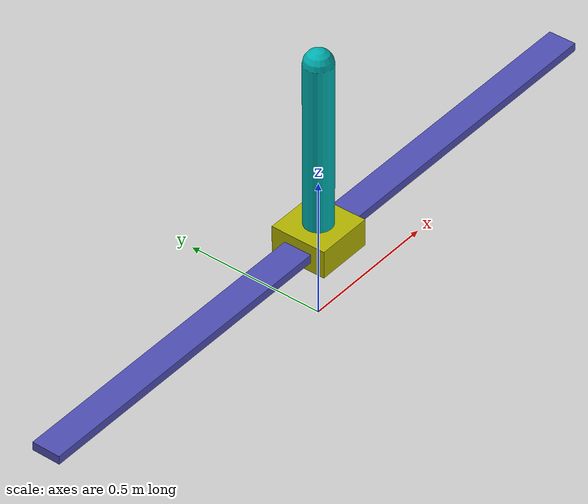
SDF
<?xml version="1.0"?>
<sdf version="1.8">
  <world name="inverted_pendulum">

    <physics name="fast" type="ignored">
      <!-- 10 ms step, unlimited real-time rate for fast training -->
      <max_step_size>0.01</max_step_size>
      <real_time_update_rate>0</real_time_update_rate>
    </physics>

    <plugin filename="gz-sim-physics-system"      name="gz::sim::systems::Physics"/>
    <plugin filename="gz-sim-scene-broadcaster-system" name="gz::sim::systems::SceneBroadcaster"/>
    <plugin filename="gz-sim-user-commands-system" name="gz::sim::systems::UserCommands"/>

    <light name="sun" type="directional">
      <cast_shadows>true</cast_shadows>
      <pose>0 0 10 0 0 0</pose>
      <diffuse>0.8 0.8 0.8 1</diffuse>
      <specular>0.2 0.2 0.2 1</specular>
      <attenuation>
        <range>1000</range><constant>0.9</constant>
        <linear>0.01</linear><quadratic>0.001</quadratic>
      </attenuation>
      <direction>-0.5 0.1 -0.9</direction>
    </light>

    <!-- Inlined model — rail sits at z=0.3 m, pole tip reaches ~1 m -->
    <model name="inverted_pendulum">
      <pose>0 0 0.3 0 0 0</pose>

      <link name="rail">
        <inertial>
          <mass>10</mass>
          <inertia>
            <ixx>0.01042</ixx><ixy>0</ixy><ixz>0</ixz>
            <iyy>5.21042</iyy><iyz>0</iyz>
            <izz>5.21667</izz>
          </inertia>
        </inertial>
        <collision name="rail_collision">
          <geometry><box><size>2.5 0.1 0.03</size></box></geometry>
        </collision>
        <visual name="rail_visual">
          <geometry><box><size>2.5 0.1 0.03</size></box></geometry>
          <material><diffuse>0.3 0.3 0.7 1</diffuse><ambient>0.3 0.3 0.7 1</ambient></material>
        </visual>
      </link>

      <joint name="rail_fixed" type="fixed">
        <parent>world</parent>
        <child>rail</child>
      </joint>

      <joint name="slider" type="prismatic">
        <parent>rail</parent>
        <child>cart</child>
        <axis>
          <xyz>1 0 0</xyz>
          <limit><lower>-1</lower><upper>1</upper><effort>300</effort><velocity>100</velocity></limit>
          <dynamics><damping>0.1</damping><friction>0</friction></dynamics>
        </axis>
      </joint>

      <link name="cart">
        <inertial>
          <mass>1</mass>
          <inertia>
            <ixx>0.00417</ixx><ixy>0</ixy><ixz>0</ixz>
            <iyy>0.00667</iyy><iyz>0</iyz>
            <izz>0.00417</izz>
          </inertia>
        </inertial>
        <collision name="cart_collision">
          <geometry><box><size>0.2 0.2 0.1</size></box></geometry>
        </collision>
        <visual name="cart_visual">
          <geometry><box><size>0.2 0.2 0.1</size></box></geometry>
          <material><diffuse>0.7 0.7 0.0 1</diffuse><ambient>0.7 0.7 0.0 1</ambient></material>
        </visual>
      </link>

      <joint name="hinge" type="revolute">
        <pose relative_to="cart">0 0 0.05 0 0 0</pose>
        <parent>cart</parent>
        <child>pole</child>
        <axis>
          <xyz>0 1 0</xyz>
          <limit><lower>-1.5708</lower><upper>1.5708</upper><effort>0</effort><velocity>100</velocity></limit>
          <dynamics><damping>0.05</damping><friction>0</friction></dynamics>
        </axis>
      </joint>

      <link name="pole">
        <pose relative_to="hinge">0 0 0 0 0 0</pose>
        <inertial>
          <pose>0 0 0.3 0 0 0</pose>
          <mass>0.1</mass>
          <inertia>
            <ixx>0.00306</ixx><ixy>0</ixy><ixz>0</ixz>
            <iyy>0.00306</iyy><iyz>0</iyz>
            <izz>0.00012</izz>
          </inertia>
        </inertial>
        <collision name="pole_collision">
          <pose>0 0 0.3 0 0 0</pose>
          <geometry><capsule><radius>0.049</radius><length>0.6</length></capsule></geometry>
        </collision>
        <visual name="pole_visual">
          <pose>0 0 0.3 0 0 0</pose>
          <geometry><capsule><radius>0.049</radius><length>0.6</length></capsule></geometry>
          <material><diffuse>0.0 0.7 0.7 1</diffuse><ambient>0.0 0.7 0.7 1</ambient></material>
        </visual>
      </link>

      <plugin filename="gz-sim-joint-controller-system"
              name="gz::sim::systems::JointController">
        <joint_name>slider</joint_name>
        <use_force_commands>true</use_force_commands>
        <cmd_max>300</cmd_max>
        <cmd_min>-300</cmd_min>
      </plugin>

      <plugin filename="gz-sim-joint-state-publisher-system"
              name="gz::sim::systems::JointStatePublisher">
        <joint_name>slider</joint_name>
        <joint_name>hinge</joint_name>
      </plugin>
    </model>

  </world>
</sdf>
